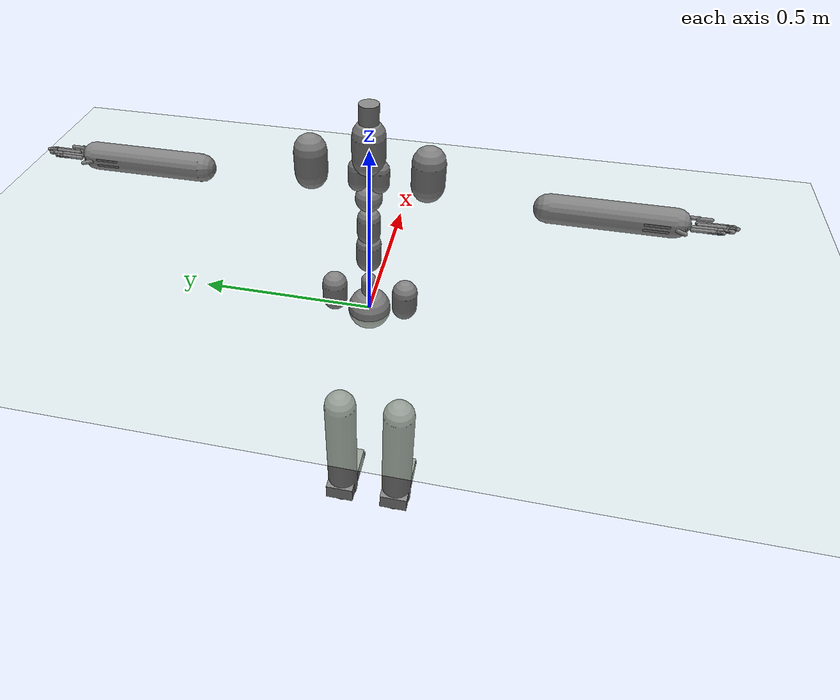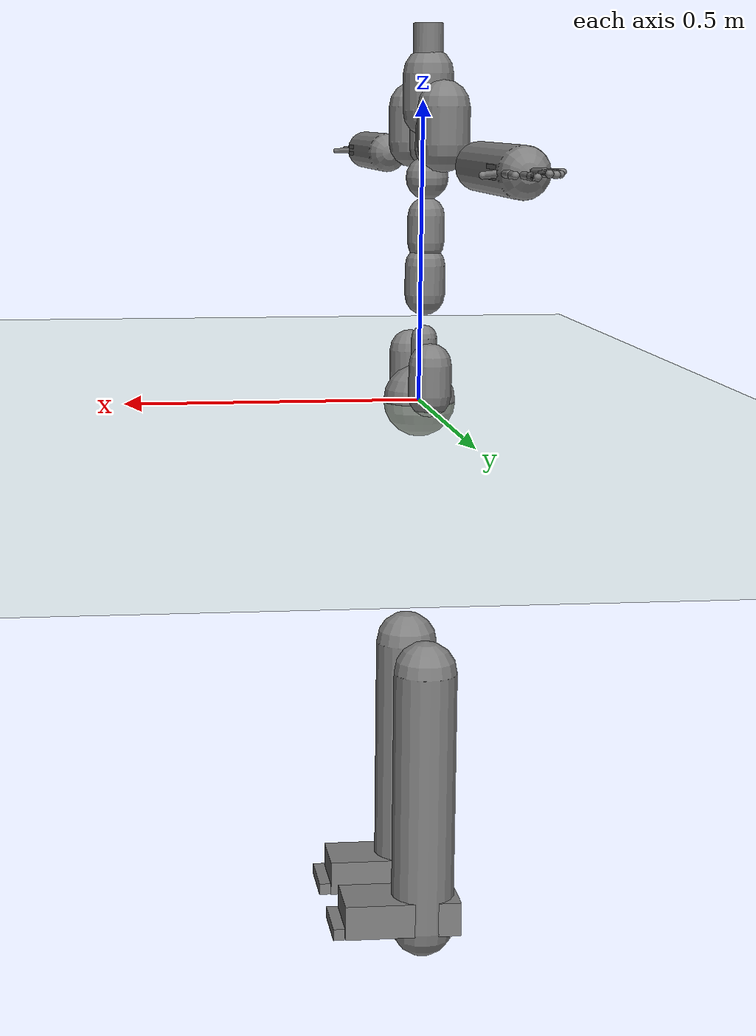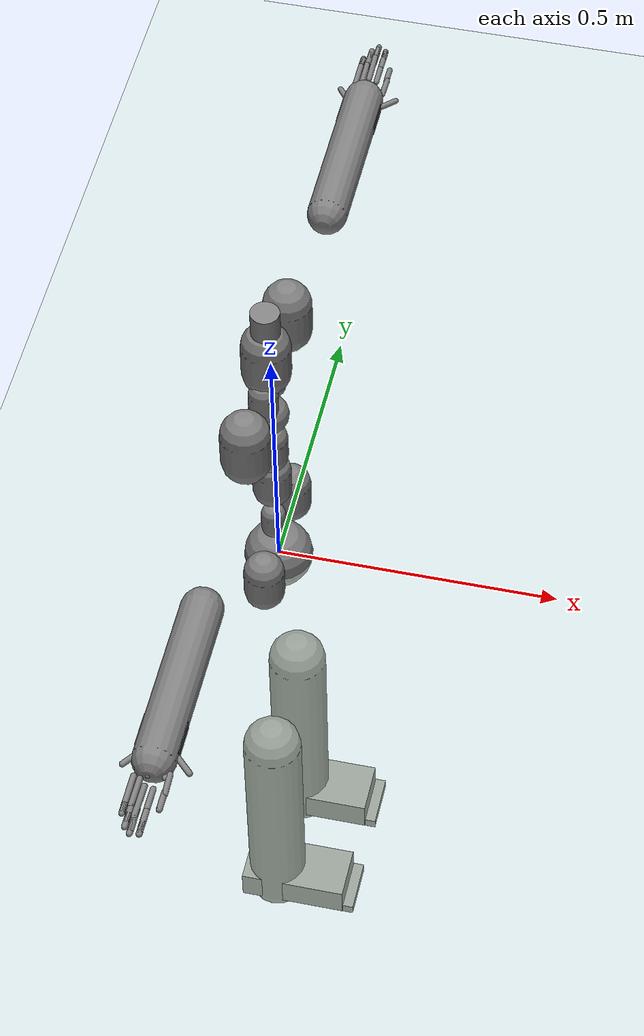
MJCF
<?xml version="1.0" ?>
<mujoco model="humanoid">
  <compiler coordinate="local"/>
  <statistic extent="2" center="0 0 1"/>
  <option timestep="0.00555"/>
  <default>
    <motor ctrlrange="-1 1" ctrllimited="true"/>
    <geom type="capsule" condim="1" friction="1.0 0.05 0.05" solimp=".9 .99 .003" solref=".015 1"/>
    <joint type="hinge" damping="0.1" stiffness="5" armature=".007" limited="true" solimplimit="0 .99 .01"/>
    <site size=".04" group="3"/>
  </default>
  <asset>
    <texture type="skybox" builtin="gradient" rgb1=".4 .5 .6" rgb2="0 0 0" width="100" height="100"/>
    <texture builtin="flat" height="1278" mark="cross" markrgb="1 1 1" name="texgeom" random="0.01" rgb1="0.8 0.6 0.4" rgb2="0.8 0.6 0.4" type="cube" width="127"/>
    <texture builtin="checker" height="100" name="texplane" rgb1="0 0 0" rgb2="0.8 0.8 0.8" type="2d" width="100"/>
    <material name="MatPlane" reflectance="0.5" shininess="1" specular="1" texrepeat="60 60" texture="texplane"/>
    <material name="geom" texture="texgeom" texuniform="true"/>
  </asset>
  <worldbody>
    <light cutoff="100" diffuse="1 1 1" dir="-0 0 -1.3" directional="true" exponent="1" pos="0 0 1.3" specular=".1 .1 .1"/>
    <geom conaffinity="1" condim="3" name="floor" pos="0 0 0" rgba="0.8 0.9 0.8 1" size="100 100 .2" type="plane" material="MatPlane"/>
    <body name="pHipOrigin" pos="0 0 0">
      <freejoint name="pHipOrigin"/>
      <geom type="sphere" contype="1" conaffinity="1" density="4629.6296296296305" size="0.06117" pos="0.0000 0.0000 -0.0000"/>
      <body name="jL5S1" pos="-0.00689298 0 0.06203665">
        <geom type="capsule" contype="1" conaffinity="1" density="1000" fromto="0 0 0.01248 0 0 0.04369" size="0.02185"/>
        <joint name="jL5S1_x" type="hinge" pos="0 0 0" axis="1 0 0" stiffness="500" damping="500" armature="0.02" range="-180.0000 180.0000"/>
        <joint name="jL5S1_y" type="hinge" pos="0 0 0" axis="0 1 0" stiffness="500" damping="500" armature="0.02" range="-180.0000 180.0000"/>
        <joint name="jL5S1_z" type="hinge" pos="0 0 0" axis="0 0 1" stiffness="500" damping="500" armature="0.02" range="-180.0000 180.0000"/>
        <body name="jL4L3" pos="0 0 0.09731791">
          <geom type="capsule" contype="1" conaffinity="1" density="1000" fromto="0 0 0.01946 0 0 0.06812" size="0.03406"/>
          <joint name="jL4L3_x" type="hinge" pos="0 0 0" axis="1 0 0" stiffness="500" damping="500" armature="0.02" range="-180.0000 180.0000"/>
          <joint name="jL4L3_y" type="hinge" pos="0 0 0" axis="0 1 0" stiffness="500" damping="500" armature="0.02" range="-180.0000 180.0000"/>
          <joint name="jL4L3_z" type="hinge" pos="0 0 0" axis="0 0 1" stiffness="500" damping="500" armature="0.02" range="-180.0000 180.0000"/>
          <body name="jL1T12" pos="-0.00068507 0 0.08879743">
            <geom type="capsule" contype="1" conaffinity="1" density="1000" fromto="0 0 0.01776 0 0 0.06216" size="0.03108"/>
            <joint name="jL1T12_x" type="hinge" pos="0 0 0" axis="1 0 0" stiffness="500" damping="500" armature="0.02" range="-180.0000 180.0000"/>
            <joint name="jL1T12_y" type="hinge" pos="0 0 0" axis="0 1 0" stiffness="500" damping="500" armature="0.02" range="-180.0000 180.0000"/>
            <joint name="jL1T12_z" type="hinge" pos="0 0 0" axis="0 0 1" stiffness="500" damping="500" armature="0.02" range="-180.0000 180.0000"/>
            <body name="jT9T8" pos="-0.00068882 0 0.08911010">
              <geom type="sphere" contype="1" conaffinity="1" density="1000" size="0.03565" pos="0.000 0.0000 0.035645"/>
              <joint name="jT9T8_x" type="hinge" pos="0 0 0" axis="1 0 0" stiffness="500" damping="500" armature="0.02" range="-180.0000 180.0000"/>
              <joint name="jT9T8_y" type="hinge" pos="0 0 0" axis="0 1 0" stiffness="500" damping="500" armature="0.02" range="-180.0000 180.0000"/>
              <joint name="jT9T8_z" type="hinge" pos="0 0 0" axis="0 0 1" stiffness="500" damping="500" armature="0.02" range="-180.0000 180.0000"/>
              <body name="jT1C7" pos="0 0 0.12090200">
                <geom type="capsule" contype="1" conaffinity="1" density="1000" fromto="0 0 0.02418 0 0 0.08463" size="0.04232"/>
                <joint name="jT1C7_x" type="hinge" pos="0 0 0" axis="1 0 0" stiffness="500" damping="500" armature="0.02" range="-180.0000 180.0000"/>
                <joint name="jT1C7_y" type="hinge" pos="0 0 0" axis="0 1 0" stiffness="500" damping="500" armature="0.02" range="-180.0000 180.0000"/>
                <joint name="jT1C7_z" type="hinge" pos="0 0 0" axis="0 0 1" stiffness="500" damping="500" armature="0.02" range="-180.0000 180.0000"/>
                <body name="jC1Head" pos="0.00097551 0 0.08268711">
                  <geom type="cylinder" contype="1" conaffinity="1" density="1000" fromto="0 0 0 0 0 0.08269" size="0.02481"/>
                  <joint name="jC1Head_x" type="hinge" pos="0 0 0" axis="1 0 0" stiffness="500" damping="500" armature="0.02" range="-180.0000 180.0000"/>
                  <joint name="jC1Head_y" type="hinge" pos="0 0 0" axis="0 1 0" stiffness="500" damping="500" armature="0.02" range="-180.0000 180.0000"/>
                  <joint name="jC1Head_z" type="hinge" pos="0 0 0" axis="0 0 1" stiffness="500" damping="500" armature="0.02" range="-180.0000 180.0000"/>
                </body>
              </body>
              <body name="jRightT4Shoulder" pos="0 -0.02752296 0.06710702">
                <geom type="capsule" contype="1" conaffinity="1" density="1000" fromto="0 0 0.01451 0 0 0.05077" size="0.02539"/>
                <joint name="jRightT4Shoulder_x" type="hinge" pos="0 0 0" axis="1 0 0" stiffness="500" damping="500" armature="0.02" range="-180.0000 180.0000"/>
                <joint name="jRightT4Shoulder_y" type="hinge" pos="0 0 0" axis="0 1 0" stiffness="500" damping="500" armature="0.02" range="-180.0000 180.0000"/>
                <joint name="jRightT4Shoulder_z" type="hinge" pos="0 0 0" axis="0 0 1" stiffness="500" damping="500" armature="0.02" range="-180.0000 180.0000"/>
                <body name="jRightShoulder" pos="0 -0.12130388 0">
                  <geom type="capsule" contype="1" conaffinity="1" density="1000" fromto="0 0 0.02426 0 0 0.08491" size="0.04246"/>
                  <joint name="jRightShoulder_x" type="hinge" pos="0 0 0" axis="1 0 0" stiffness="500" damping="500" armature="0.02" range="-180.0000 180.0000"/>
                  <joint name="jRightShoulder_y" type="hinge" pos="0 0 0" axis="0 1 0" stiffness="500" damping="500" armature="0.02" range="-180.0000 180.0000"/>
                  <joint name="jRightShoulder_z" type="hinge" pos="0 0 0" axis="0 0 1" stiffness="500" damping="500" armature="0.02" range="-180.0000 180.0000"/>
                  <body name="jRightElbow" pos="0 -0.29600415 0">
                    <geom type="capsule" contype="1" conaffinity="1" density="1000" fromto="0 0 0 0.00000000 -0.29600415 0.00000000" size="0.03552"/>
                    <joint name="jRightElbow_x" type="hinge" pos="0 0 0" axis="1 0 0" stiffness="500" damping="500" armature="0.02" range="-180.0000 180.0000"/>
                    <joint name="jRightElbow_y" type="hinge" pos="0 0 0" axis="0 1 0" stiffness="500" damping="500" armature="0.02" range="-180.0000 180.0000"/>
                    <joint name="jRightElbow_z" type="hinge" pos="0 0 0" axis="0 0 1" stiffness="500" damping="500" armature="0.02" range="-180.0000 180.0000"/>
                    <body name="jRightWrist" pos="0.00010124 -0.25153226 0">
                      <geom density="1000" type="box" pos="0 0 0" size="0.035 0.03 0.01" quat="1.0000 0.0000 0.0000 0.0000"/>
                      <joint name="jRightWrist_x" type="hinge" pos="0 0 0" axis="1 0 0" stiffness="500" damping="500" armature="0.02" range="-180.0000 180.0000"/>
                      <joint name="jRightWrist_y" type="hinge" pos="0 0 0" axis="0 1 0" stiffness="500" damping="500" armature="0.02" range="-180.0000 180.0000"/>
                      <joint name="jRightWrist_z" type="hinge" pos="0 0 0" axis="0 0 1" stiffness="500" damping="500" armature="0.02" range="-180.0000 180.0000"/>
                      <body name="jRightFirstCMC" pos="0.02922663 -0.02801536 -0.00132356">
                        <geom type="capsule" contype="1" conaffinity="1" density="1000" fromto="0 0 0 0.02922663 -0.02801536 -0.00132356" size="0.005"/>
                        <joint name="jRightFirstCMC_x" type="hinge" pos="0 0 0" axis="1 0 0" stiffness="500" damping="500" armature="0.02" range="-180.0000 180.0000"/>
                        <joint name="jRightFirstCMC_y" type="hinge" pos="0 0 0" axis="0 1 0" stiffness="500" damping="500" armature="0.02" range="-180.0000 180.0000"/>
                        <joint name="jRightFirstCMC_z" type="hinge" pos="0 0 0" axis="0 0 1" stiffness="500" damping="500" armature="0.02" range="-180.0000 180.0000"/>
                        <body name="jRightFirstMCP" pos="0.00131620 -0.03714235 0.00078482">
                          <geom type="capsule" contype="1" conaffinity="1" density="1000" fromto="0 0 0 0.00131620 -0.03714235 0.00078482" size="0.005"/>
                          <joint name="jRightFirstMCP_x" type="hinge" pos="0 0 0" axis="1 0 0" stiffness="500" damping="500" armature="0.02" range="-180.0000 180.0000"/>
                          <joint name="jRightFirstMCP_y" type="hinge" pos="0 0 0" axis="0 1 0" stiffness="500" damping="500" armature="0.02" range="-180.0000 180.0000"/>
                          <joint name="jRightFirstMCP_z" type="hinge" pos="0 0 0" axis="0 0 1" stiffness="500" damping="500" armature="0.02" range="-180.0000 180.0000"/>
                          <body name="jRightIP" pos="0 -0.03266054 0">
                            <geom type="capsule" contype="1" conaffinity="1" density="1000" fromto="0 0 0 0.00000000 -0.03266054 0.00000000" size="0.005"/>
                            <joint name="jRightIP_x" type="hinge" pos="0 0 0" axis="1 0 0" stiffness="500" damping="500" armature="0.02" range="-180.0000 180.0000"/>
                            <joint name="jRightIP_y" type="hinge" pos="0 0 0" axis="0 1 0" stiffness="500" damping="500" armature="0.02" range="-180.0000 180.0000"/>
                            <joint name="jRightIP_z" type="hinge" pos="0 0 0" axis="0 0 1" stiffness="500" damping="500" armature="0.02" range="-180.0000 180.0000"/>
                          </body>
                        </body>
                      </body>
                      <body name="jRightSecondCMC" pos="0.01238404 -0.03618225 -0.00063111">
                        <geom type="capsule" contype="1" conaffinity="1" density="1000" fromto="0 0 0 0.01238404 -0.03618225 -0.00063111" size="0.005"/>
                        <joint name="jRightSecondCMC_x" type="hinge" pos="0 0 0" axis="1 0 0" stiffness="500" damping="500" armature="0.02" range="-180.0000 180.0000"/>
                        <joint name="jRightSecondCMC_y" type="hinge" pos="0 0 0" axis="0 1 0" stiffness="500" damping="500" armature="0.02" range="-180.0000 180.0000"/>
                        <joint name="jRightSecondCMC_z" type="hinge" pos="0 0 0" axis="0 0 1" stiffness="500" damping="500" armature="0.02" range="-180.0000 180.0000"/>
                        <body name="jRightSecondMCP" pos="-0.00037720 -0.06016009 -0.00062406">
                          <geom type="capsule" contype="1" conaffinity="1" density="1000" fromto="0 0 0 -0.00037720 -0.06016009 -0.00062406" size="0.005"/>
                          <joint name="jRightSecondMCP_x" type="hinge" pos="0 0 0" axis="1 0 0" stiffness="500" damping="500" armature="0.02" range="-180.0000 180.0000"/>
                          <joint name="jRightSecondMCP_y" type="hinge" pos="0 0 0" axis="0 1 0" stiffness="500" damping="500" armature="0.02" range="-180.0000 180.0000"/>
                          <joint name="jRightSecondMCP_z" type="hinge" pos="0 0 0" axis="0 0 1" stiffness="500" damping="500" armature="0.02" range="-180.0000 180.0000"/>
                          <body name="jRightSecondPIP" pos="0 -0.03974905 0">
                            <geom type="capsule" contype="1" conaffinity="1" density="1000" fromto="0 0 0 0.00000000 -0.03974905 0.00000000" size="0.005"/>
                            <joint name="jRightSecondPIP_x" type="hinge" pos="0 0 0" axis="1 0 0" stiffness="500" damping="500" armature="0.02" range="-180.0000 180.0000"/>
                            <joint name="jRightSecondPIP_y" type="hinge" pos="0 0 0" axis="0 1 0" stiffness="500" damping="500" armature="0.02" range="-180.0000 180.0000"/>
                            <joint name="jRightSecondPIP_z" type="hinge" pos="0 0 0" axis="0 0 1" stiffness="500" damping="500" armature="0.02" range="-180.0000 180.0000"/>
                            <body name="jRightSecondDIP" pos="0 -0.02152674 0">
                              <geom type="capsule" contype="1" conaffinity="1" density="1000" fromto="0 0 0 0.00000000 -0.02152674 0.00000000" size="0.005"/>
                              <joint name="jRightSecondDIP_x" type="hinge" pos="0 0 0" axis="1 0 0" stiffness="500" damping="500" armature="0.02" range="-180.0000 180.0000"/>
                              <joint name="jRightSecondDIP_y" type="hinge" pos="0 0 0" axis="0 1 0" stiffness="500" damping="500" armature="0.02" range="-180.0000 180.0000"/>
                              <joint name="jRightSecondDIP_z" type="hinge" pos="0 0 0" axis="0 0 1" stiffness="500" damping="500" armature="0.02" range="-180.0000 180.0000"/>
                            </body>
                          </body>
                        </body>
                      </body>
                      <body name="jRightThirdCMC" pos="-0.00070271 -0.03800070 0.00159761">
                        <geom type="capsule" contype="1" conaffinity="1" density="1000" fromto="0 0 0 -0.00070271 -0.03800070 0.00159761" size="0.005"/>
                        <joint name="jRightThirdCMC_x" type="hinge" pos="0 0 0" axis="1 0 0" stiffness="500" damping="500" armature="0.02" range="-180.0000 180.0000"/>
                        <joint name="jRightThirdCMC_y" type="hinge" pos="0 0 0" axis="0 1 0" stiffness="500" damping="500" armature="0.02" range="-180.0000 180.0000"/>
                        <joint name="jRightThirdCMC_z" type="hinge" pos="0 0 0" axis="0 0 1" stiffness="500" damping="500" armature="0.02" range="-180.0000 180.0000"/>
                        <body name="jRightThirdMCP" pos="-0.00070407 -0.05833211 0.00158699">
                          <geom type="capsule" contype="1" conaffinity="1" density="1000" fromto="0 0 0 -0.00070407 -0.05833211 0.00158699" size="0.005"/>
                          <joint name="jRightThirdMCP_x" type="hinge" pos="0 0 0" axis="1 0 0" stiffness="500" damping="500" armature="0.02" range="-180.0000 180.0000"/>
                          <joint name="jRightThirdMCP_y" type="hinge" pos="0 0 0" axis="0 1 0" stiffness="500" damping="500" armature="0.02" range="-180.0000 180.0000"/>
                          <joint name="jRightThirdMCP_z" type="hinge" pos="0 0 0" axis="0 0 1" stiffness="500" damping="500" armature="0.02" range="-180.0000 180.0000"/>
                          <body name="jRightThirdPIP" pos="0 -0.04177861 0">
                            <geom type="capsule" contype="1" conaffinity="1" density="1000" fromto="0 0 0 0.00000000 -0.04177861 0.00000000" size="0.005"/>
                            <joint name="jRightThirdPIP_x" type="hinge" pos="0 0 0" axis="1 0 0" stiffness="500" damping="500" armature="0.02" range="-180.0000 180.0000"/>
                            <joint name="jRightThirdPIP_y" type="hinge" pos="0 0 0" axis="0 1 0" stiffness="500" damping="500" armature="0.02" range="-180.0000 180.0000"/>
                            <joint name="jRightThirdPIP_z" type="hinge" pos="0 0 0" axis="0 0 1" stiffness="500" damping="500" armature="0.02" range="-180.0000 180.0000"/>
                            <body name="jRightThirdDIP" pos="0 -0.02285826 0">
                              <geom type="capsule" contype="1" conaffinity="1" density="1000" fromto="0 0 0 0.00000000 -0.02285826 0.00000000" size="0.005"/>
                              <joint name="jRightThirdDIP_x" type="hinge" pos="0 0 0" axis="1 0 0" stiffness="500" damping="500" armature="0.02" range="-180.0000 180.0000"/>
                              <joint name="jRightThirdDIP_y" type="hinge" pos="0 0 0" axis="0 1 0" stiffness="500" damping="500" armature="0.02" range="-180.0000 180.0000"/>
                              <joint name="jRightThirdDIP_z" type="hinge" pos="0 0 0" axis="0 0 1" stiffness="500" damping="500" armature="0.02" range="-180.0000 180.0000"/>
                            </body>
                          </body>
                        </body>
                      </body>
                      <body name="jRightFourthCMC" pos="-0.01169525 -0.03257319 0.00076672">
                        <geom type="capsule" contype="1" conaffinity="1" density="1000" fromto="0 0 0 -0.01169525 -0.03257319 0.00076672" size="0.005"/>
                        <joint name="jRightFourthCMC_x" type="hinge" pos="0 0 0" axis="1 0 0" stiffness="500" damping="500" armature="0.02" range="-180.0000 180.0000"/>
                        <joint name="jRightFourthCMC_y" type="hinge" pos="0 0 0" axis="0 1 0" stiffness="500" damping="500" armature="0.02" range="-180.0000 180.0000"/>
                        <joint name="jRightFourthCMC_z" type="hinge" pos="0 0 0" axis="0 0 1" stiffness="500" damping="500" armature="0.02" range="-180.0000 180.0000"/>
                        <body name="jRightFourthMCP" pos="-0.00037118 -0.05087332 0.00079926">
                          <geom type="capsule" contype="1" conaffinity="1" density="1000" fromto="0 0 0 -0.00037118 -0.05087332 0.00079926" size="0.005"/>
                          <joint name="jRightFourthMCP_x" type="hinge" pos="0 0 0" axis="1 0 0" stiffness="500" damping="500" armature="0.02" range="-180.0000 180.0000"/>
                          <joint name="jRightFourthMCP_y" type="hinge" pos="0 0 0" axis="0 1 0" stiffness="500" damping="500" armature="0.02" range="-180.0000 180.0000"/>
                          <joint name="jRightFourthMCP_z" type="hinge" pos="0 0 0" axis="0 0 1" stiffness="500" damping="500" armature="0.02" range="-180.0000 180.0000"/>
                          <body name="jRightFourthPIP" pos="0 -0.04096124 0">
                            <geom type="capsule" contype="1" conaffinity="1" density="1000" fromto="0 0 0 0.00000000 -0.04096124 0.00000000" size="0.005"/>
                            <joint name="jRightFourthPIP_x" type="hinge" pos="0 0 0" axis="1 0 0" stiffness="500" damping="500" armature="0.02" range="-180.0000 180.0000"/>
                            <joint name="jRightFourthPIP_y" type="hinge" pos="0 0 0" axis="0 1 0" stiffness="500" damping="500" armature="0.02" range="-180.0000 180.0000"/>
                            <joint name="jRightFourthPIP_z" type="hinge" pos="0 0 0" axis="0 0 1" stiffness="500" damping="500" armature="0.02" range="-180.0000 180.0000"/>
                            <body name="jRightFourthDIP" pos="0 -0.02423431 0">
                              <geom type="capsule" contype="1" conaffinity="1" density="1000" fromto="0 0 0 0.00000000 -0.02423431 0.00000000" size="0.005"/>
                              <joint name="jRightFourthDIP_x" type="hinge" pos="0 0 0" axis="1 0 0" stiffness="500" damping="500" armature="0.02" range="-180.0000 180.0000"/>
                              <joint name="jRightFourthDIP_y" type="hinge" pos="0 0 0" axis="0 1 0" stiffness="500" damping="500" armature="0.02" range="-180.0000 180.0000"/>
                              <joint name="jRightFourthDIP_z" type="hinge" pos="0 0 0" axis="0 0 1" stiffness="500" damping="500" armature="0.02" range="-180.0000 180.0000"/>
                            </body>
                          </body>
                        </body>
                      </body>
                      <body name="jRightFifthCMC" pos="-0.02265407 -0.03156586 0.00062269">
                        <geom type="capsule" contype="1" conaffinity="1" density="1000" fromto="0 0 0 -0.02265407 -0.03156586 0.00062269" size="0.005"/>
                        <joint name="jRightFifthCMC_x" type="hinge" pos="0 0 0" axis="1 0 0" stiffness="500" damping="500" armature="0.02" range="-180.0000 180.0000"/>
                        <joint name="jRightFifthCMC_y" type="hinge" pos="0 0 0" axis="0 1 0" stiffness="500" damping="500" armature="0.02" range="-180.0000 180.0000"/>
                        <joint name="jRightFifthCMC_z" type="hinge" pos="0 0 0" axis="0 0 1" stiffness="500" damping="500" armature="0.02" range="-180.0000 180.0000"/>
                        <body name="jRightFifthMCP" pos="-0.00000724 -0.04900972 0.00067443">
                          <geom type="capsule" contype="1" conaffinity="1" density="1000" fromto="0 0 0 -0.00000724 -0.04900972 0.00067443" size="0.005"/>
                          <joint name="jRightFifthMCP_x" type="hinge" pos="0 0 0" axis="1 0 0" stiffness="500" damping="500" armature="0.02" range="-180.0000 180.0000"/>
                          <joint name="jRightFifthMCP_y" type="hinge" pos="0 0 0" axis="0 1 0" stiffness="500" damping="500" armature="0.02" range="-180.0000 180.0000"/>
                          <joint name="jRightFifthMCP_z" type="hinge" pos="0 0 0" axis="0 0 1" stiffness="500" damping="500" armature="0.02" range="-180.0000 180.0000"/>
                          <body name="jRightFifthPIP" pos="0 -0.03416834 0">
                            <geom type="capsule" contype="1" conaffinity="1" density="1000" fromto="0 0 0 0.00000000 -0.03416834 0.00000000" size="0.005"/>
                            <joint name="jRightFifthPIP_x" type="hinge" pos="0 0 0" axis="1 0 0" stiffness="500" damping="500" armature="0.02" range="-180.0000 180.0000"/>
                            <joint name="jRightFifthPIP_y" type="hinge" pos="0 0 0" axis="0 1 0" stiffness="500" damping="500" armature="0.02" range="-180.0000 180.0000"/>
                            <joint name="jRightFifthPIP_z" type="hinge" pos="0 0 0" axis="0 0 1" stiffness="500" damping="500" armature="0.02" range="-180.0000 180.0000"/>
                            <body name="jRightFifthDIP" pos="0 -0.01755431 0">
                              <geom type="capsule" contype="1" conaffinity="1" density="1000" fromto="0 0 0 0.00000000 -0.01755431 0.00000000" size="0.005"/>
                              <joint name="jRightFifthDIP_x" type="hinge" pos="0 0 0" axis="1 0 0" stiffness="500" damping="500" armature="0.02" range="-180.0000 180.0000"/>
                              <joint name="jRightFifthDIP_y" type="hinge" pos="0 0 0" axis="0 1 0" stiffness="500" damping="500" armature="0.02" range="-180.0000 180.0000"/>
                              <joint name="jRightFifthDIP_z" type="hinge" pos="0 0 0" axis="0 0 1" stiffness="500" damping="500" armature="0.02" range="-180.0000 180.0000"/>
                            </body>
                          </body>
                        </body>
                      </body>
                    </body>
                  </body>
                </body>
              </body>
              <body name="jLeftT4Shoulder" pos="0 0.02756396 0.06720699">
                <geom type="capsule" contype="1" conaffinity="1" density="1000" fromto="0 0 0.01453 0 0 0.05085" size="0.02542"/>
                <joint name="jLeftT4Shoulder_x" type="hinge" pos="0 0 0" axis="1 0 0" stiffness="500" damping="500" armature="0.02" range="-180.0000 180.0000"/>
                <joint name="jLeftT4Shoulder_y" type="hinge" pos="0 0 0" axis="0 1 0" stiffness="500" damping="500" armature="0.02" range="-180.0000 180.0000"/>
                <joint name="jLeftT4Shoulder_z" type="hinge" pos="0 0 0" axis="0 0 1" stiffness="500" damping="500" armature="0.02" range="-180.0000 180.0000"/>
                <body name="jLeftShoulder" pos="0 0.12072624 0">
                  <geom type="capsule" contype="1" conaffinity="1" density="1000" fromto="0 0 0.02415 0 0 0.08451" size="0.04225"/>
                  <joint name="jLeftShoulder_x" type="hinge" pos="0 0 0" axis="1 0 0" stiffness="500" damping="500" armature="0.02" range="-180.0000 180.0000"/>
                  <joint name="jLeftShoulder_y" type="hinge" pos="0 0 0" axis="0 1 0" stiffness="500" damping="500" armature="0.02" range="-180.0000 180.0000"/>
                  <joint name="jLeftShoulder_z" type="hinge" pos="0 0 0" axis="0 0 1" stiffness="500" damping="500" armature="0.02" range="-180.0000 180.0000"/>
                  <body name="jLeftElbow" pos="0 0.29724428 0">
                    <geom type="capsule" contype="1" conaffinity="1" density="1000" fromto="0 0 0 0.00000000 0.29724428 0.00000000" size="0.03567"/>
                    <joint name="jLeftElbow_x" type="hinge" pos="0 0 0" axis="1 0 0" stiffness="500" damping="500" armature="0.02" range="-180.0000 180.0000"/>
                    <joint name="jLeftElbow_y" type="hinge" pos="0 0 0" axis="0 1 0" stiffness="500" damping="500" armature="0.02" range="-180.0000 180.0000"/>
                    <joint name="jLeftElbow_z" type="hinge" pos="0 0 0" axis="0 0 1" stiffness="500" damping="500" armature="0.02" range="-180.0000 180.0000"/>
                    <body name="jLeftWrist" pos="0.00010138 0.25187725 0">
                      <geom density="1000" type="box" pos="0 0 0" size="0.035 0.03 0.01" quat="1.0000 0.0000 0.0000 0.0000"/>
                      <joint name="jLeftWrist_x" type="hinge" pos="0 0 0" axis="1 0 0" stiffness="500" damping="500" armature="0.02" range="-180.0000 180.0000"/>
                      <joint name="jLeftWrist_y" type="hinge" pos="0 0 0" axis="0 1 0" stiffness="500" damping="500" armature="0.02" range="-180.0000 180.0000"/>
                      <joint name="jLeftWrist_z" type="hinge" pos="0 0 0" axis="0 0 1" stiffness="500" damping="500" armature="0.02" range="-180.0000 180.0000"/>
                      <body name="jLeftFirstCMC" pos="0.02860598 0.02867354 -0.00128031">
                        <geom type="capsule" contype="1" conaffinity="1" density="1000" fromto="0 0 0 0.02860598 0.02867354 -0.00128031" size="0.005"/>
                        <joint name="jLeftFirstCMC_x" type="hinge" pos="0 0 0" axis="1 0 0" stiffness="500" damping="500" armature="0.02" range="-180.0000 180.0000"/>
                        <joint name="jLeftFirstCMC_y" type="hinge" pos="0 0 0" axis="0 1 0" stiffness="500" damping="500" armature="0.02" range="-180.0000 180.0000"/>
                        <joint name="jLeftFirstCMC_z" type="hinge" pos="0 0 0" axis="0 0 1" stiffness="500" damping="500" armature="0.02" range="-180.0000 180.0000"/>
                        <body name="jLeftFirstMCP" pos="0.00130352 0.03714152 0.00076483">
                          <geom type="capsule" contype="1" conaffinity="1" density="1000" fromto="0 0 0 0.00130352 0.03714152 0.00076483" size="0.005"/>
                          <joint name="jLeftFirstMCP_x" type="hinge" pos="0 0 0" axis="1 0 0" stiffness="500" damping="500" armature="0.02" range="-180.0000 180.0000"/>
                          <joint name="jLeftFirstMCP_y" type="hinge" pos="0 0 0" axis="0 1 0" stiffness="500" damping="500" armature="0.02" range="-180.0000 180.0000"/>
                          <joint name="jLeftFirstMCP_z" type="hinge" pos="0 0 0" axis="0 0 1" stiffness="500" damping="500" armature="0.02" range="-180.0000 180.0000"/>
                          <body name="jLeftIP" pos="0 0.03266054 0">
                            <geom type="capsule" contype="1" conaffinity="1" density="1000" fromto="0 0 0 0.00000000 0.03266054 0.00000000" size="0.005"/>
                            <joint name="jLeftIP_x" type="hinge" pos="0 0 0" axis="1 0 0" stiffness="500" damping="500" armature="0.02" range="-180.0000 180.0000"/>
                            <joint name="jLeftIP_y" type="hinge" pos="0 0 0" axis="0 1 0" stiffness="500" damping="500" armature="0.02" range="-180.0000 180.0000"/>
                            <joint name="jLeftIP_z" type="hinge" pos="0 0 0" axis="0 0 1" stiffness="500" damping="500" armature="0.02" range="-180.0000 180.0000"/>
                          </body>
                        </body>
                      </body>
                      <body name="jLeftSecondCMC" pos="0.01252668 0.03611567 -0.00063632">
                        <geom type="capsule" contype="1" conaffinity="1" density="1000" fromto="0 0 0 0.01252668 0.03611567 -0.00063632" size="0.005"/>
                        <joint name="jLeftSecondCMC_x" type="hinge" pos="0 0 0" axis="1 0 0" stiffness="500" damping="500" armature="0.02" range="-180.0000 180.0000"/>
                        <joint name="jLeftSecondCMC_y" type="hinge" pos="0 0 0" axis="0 1 0" stiffness="500" damping="500" armature="0.02" range="-180.0000 180.0000"/>
                        <joint name="jLeftSecondCMC_z" type="hinge" pos="0 0 0" axis="0 0 1" stiffness="500" damping="500" armature="0.02" range="-180.0000 180.0000"/>
                        <body name="jLeftSecondMCP" pos="-0.00032889 0.06016132 -0.00063177">
                          <geom type="capsule" contype="1" conaffinity="1" density="1000" fromto="0 0 0 -0.00032889 0.06016132 -0.00063177" size="0.005"/>
                          <joint name="jLeftSecondMCP_x" type="hinge" pos="0 0 0" axis="1 0 0" stiffness="500" damping="500" armature="0.02" range="-180.0000 180.0000"/>
                          <joint name="jLeftSecondMCP_y" type="hinge" pos="0 0 0" axis="0 1 0" stiffness="500" damping="500" armature="0.02" range="-180.0000 180.0000"/>
                          <joint name="jLeftSecondMCP_z" type="hinge" pos="0 0 0" axis="0 0 1" stiffness="500" damping="500" armature="0.02" range="-180.0000 180.0000"/>
                          <body name="jLeftSecondPIP" pos="0 0.03974905 0">
                            <geom type="capsule" contype="1" conaffinity="1" density="1000" fromto="0 0 0 0.00000000 0.03974905 0.00000000" size="0.005"/>
                            <joint name="jLeftSecondPIP_x" type="hinge" pos="0 0 0" axis="1 0 0" stiffness="500" damping="500" armature="0.02" range="-180.0000 180.0000"/>
                            <joint name="jLeftSecondPIP_y" type="hinge" pos="0 0 0" axis="0 1 0" stiffness="500" damping="500" armature="0.02" range="-180.0000 180.0000"/>
                            <joint name="jLeftSecondPIP_z" type="hinge" pos="0 0 0" axis="0 0 1" stiffness="500" damping="500" armature="0.02" range="-180.0000 180.0000"/>
                            <body name="jLeftSecondDIP" pos="0 0.02152674 0">
                              <geom type="capsule" contype="1" conaffinity="1" density="1000" fromto="0 0 0 0.00000000 0.02152674 0.00000000" size="0.005"/>
                              <joint name="jLeftSecondDIP_x" type="hinge" pos="0 0 0" axis="1 0 0" stiffness="500" damping="500" armature="0.02" range="-180.0000 180.0000"/>
                              <joint name="jLeftSecondDIP_y" type="hinge" pos="0 0 0" axis="0 1 0" stiffness="500" damping="500" armature="0.02" range="-180.0000 180.0000"/>
                              <joint name="jLeftSecondDIP_z" type="hinge" pos="0 0 0" axis="0 0 1" stiffness="500" damping="500" armature="0.02" range="-180.0000 180.0000"/>
                            </body>
                          </body>
                        </body>
                      </body>
                      <body name="jLeftThirdCMC" pos="-0.00070683 0.03800411 0.00154435">
                        <geom type="capsule" contype="1" conaffinity="1" density="1000" fromto="0 0 0 -0.00070683 0.03800411 0.00154435" size="0.005"/>
                        <joint name="jLeftThirdCMC_x" type="hinge" pos="0 0 0" axis="1 0 0" stiffness="500" damping="500" armature="0.02" range="-180.0000 180.0000"/>
                        <joint name="jLeftThirdCMC_y" type="hinge" pos="0 0 0" axis="0 1 0" stiffness="500" damping="500" armature="0.02" range="-180.0000 180.0000"/>
                        <joint name="jLeftThirdCMC_z" type="hinge" pos="0 0 0" axis="0 0 1" stiffness="500" damping="500" armature="0.02" range="-180.0000 180.0000"/>
                        <body name="jLeftThirdMCP" pos="-0.00070975 0.05833324 0.00155509">
                          <geom type="capsule" contype="1" conaffinity="1" density="1000" fromto="0 0 0 -0.00070975 0.05833324 0.00155509" size="0.005"/>
                          <joint name="jLeftThirdMCP_x" type="hinge" pos="0 0 0" axis="1 0 0" stiffness="500" damping="500" armature="0.02" range="-180.0000 180.0000"/>
                          <joint name="jLeftThirdMCP_y" type="hinge" pos="0 0 0" axis="0 1 0" stiffness="500" damping="500" armature="0.02" range="-180.0000 180.0000"/>
                          <joint name="jLeftThirdMCP_z" type="hinge" pos="0 0 0" axis="0 0 1" stiffness="500" damping="500" armature="0.02" range="-180.0000 180.0000"/>
                          <body name="jLeftThirdPIP" pos="0 0.04177861 0">
                            <geom type="capsule" contype="1" conaffinity="1" density="1000" fromto="0 0 0 0.00000000 0.04177861 0.00000000" size="0.005"/>
                            <joint name="jLeftThirdPIP_x" type="hinge" pos="0 0 0" axis="1 0 0" stiffness="500" damping="500" armature="0.02" range="-180.0000 180.0000"/>
                            <joint name="jLeftThirdPIP_y" type="hinge" pos="0 0 0" axis="0 1 0" stiffness="500" damping="500" armature="0.02" range="-180.0000 180.0000"/>
                            <joint name="jLeftThirdPIP_z" type="hinge" pos="0 0 0" axis="0 0 1" stiffness="500" damping="500" armature="0.02" range="-180.0000 180.0000"/>
                            <body name="jLeftThirdDIP" pos="0 0.02285826 0">
                              <geom type="capsule" contype="1" conaffinity="1" density="1000" fromto="0 0 0 0.00000000 0.02285826 0.00000000" size="0.005"/>
                              <joint name="jLeftThirdDIP_x" type="hinge" pos="0 0 0" axis="1 0 0" stiffness="500" damping="500" armature="0.02" range="-180.0000 180.0000"/>
                              <joint name="jLeftThirdDIP_y" type="hinge" pos="0 0 0" axis="0 1 0" stiffness="500" damping="500" armature="0.02" range="-180.0000 180.0000"/>
                              <joint name="jLeftThirdDIP_z" type="hinge" pos="0 0 0" axis="0 0 1" stiffness="500" damping="500" armature="0.02" range="-180.0000 180.0000"/>
                            </body>
                          </body>
                        </body>
                      </body>
                      <body name="jLeftFourthCMC" pos="-0.01212438 0.03240658 0.00081847">
                        <geom type="capsule" contype="1" conaffinity="1" density="1000" fromto="0 0 0 -0.01212438 0.03240658 0.00081847" size="0.005"/>
                        <joint name="jLeftFourthCMC_x" type="hinge" pos="0 0 0" axis="1 0 0" stiffness="500" damping="500" armature="0.02" range="-180.0000 180.0000"/>
                        <joint name="jLeftFourthCMC_y" type="hinge" pos="0 0 0" axis="0 1 0" stiffness="500" damping="500" armature="0.02" range="-180.0000 180.0000"/>
                        <joint name="jLeftFourthCMC_z" type="hinge" pos="0 0 0" axis="0 0 1" stiffness="500" damping="500" armature="0.02" range="-180.0000 180.0000"/>
                        <body name="jLeftFourthMCP" pos="-0.00039917 0.05087041 0.00084531">
                          <geom type="capsule" contype="1" conaffinity="1" density="1000" fromto="0 0 0 -0.00039917 0.05087041 0.00084531" size="0.005"/>
                          <joint name="jLeftFourthMCP_x" type="hinge" pos="0 0 0" axis="1 0 0" stiffness="500" damping="500" armature="0.02" range="-180.0000 180.0000"/>
                          <joint name="jLeftFourthMCP_y" type="hinge" pos="0 0 0" axis="0 1 0" stiffness="500" damping="500" armature="0.02" range="-180.0000 180.0000"/>
                          <joint name="jLeftFourthMCP_z" type="hinge" pos="0 0 0" axis="0 0 1" stiffness="500" damping="500" armature="0.02" range="-180.0000 180.0000"/>
                          <body name="jLeftFourthPIP" pos="0 0.04096124 0">
                            <geom type="capsule" contype="1" conaffinity="1" density="1000" fromto="0 0 0 0.00000000 0.04096124 0.00000000" size="0.005"/>
                            <joint name="jLeftFourthPIP_x" type="hinge" pos="0 0 0" axis="1 0 0" stiffness="500" damping="500" armature="0.02" range="-180.0000 180.0000"/>
                            <joint name="jLeftFourthPIP_y" type="hinge" pos="0 0 0" axis="0 1 0" stiffness="500" damping="500" armature="0.02" range="-180.0000 180.0000"/>
                            <joint name="jLeftFourthPIP_z" type="hinge" pos="0 0 0" axis="0 0 1" stiffness="500" damping="500" armature="0.02" range="-180.0000 180.0000"/>
                            <body name="jLeftFourthDIP" pos="0 0.02423431 0">
                              <geom type="capsule" contype="1" conaffinity="1" density="1000" fromto="0 0 0 0.00000000 0.02423431 0.00000000" size="0.005"/>
                              <joint name="jLeftFourthDIP_x" type="hinge" pos="0 0 0" axis="1 0 0" stiffness="500" damping="500" armature="0.02" range="-180.0000 180.0000"/>
                              <joint name="jLeftFourthDIP_y" type="hinge" pos="0 0 0" axis="0 1 0" stiffness="500" damping="500" armature="0.02" range="-180.0000 180.0000"/>
                              <joint name="jLeftFourthDIP_z" type="hinge" pos="0 0 0" axis="0 0 1" stiffness="500" damping="500" armature="0.02" range="-180.0000 180.0000"/>
                            </body>
                          </body>
                        </body>
                      </body>
                      <body name="jLeftFifthCMC" pos="-0.02334035 0.03106683 0.00063270">
                        <geom type="capsule" contype="1" conaffinity="1" density="1000" fromto="0 0 0 -0.02334035 0.03106683 0.00063270" size="0.005"/>
                        <joint name="jLeftFifthCMC_x" type="hinge" pos="0 0 0" axis="1 0 0" stiffness="500" damping="500" armature="0.02" range="-180.0000 180.0000"/>
                        <joint name="jLeftFifthCMC_y" type="hinge" pos="0 0 0" axis="0 1 0" stiffness="500" damping="500" armature="0.02" range="-180.0000 180.0000"/>
                        <joint name="jLeftFifthCMC_z" type="hinge" pos="0 0 0" axis="0 0 1" stiffness="500" damping="500" armature="0.02" range="-180.0000 180.0000"/>
                        <body name="jLeftFifthMCP" pos="-0.00001390 0.04900838 0.00070520">
                          <geom type="capsule" contype="1" conaffinity="1" density="1000" fromto="0 0 0 -0.00001390 0.04900838 0.00070520" size="0.005"/>
                          <joint name="jLeftFifthMCP_x" type="hinge" pos="0 0 0" axis="1 0 0" stiffness="500" damping="500" armature="0.02" range="-180.0000 180.0000"/>
                          <joint name="jLeftFifthMCP_y" type="hinge" pos="0 0 0" axis="0 1 0" stiffness="500" damping="500" armature="0.02" range="-180.0000 180.0000"/>
                          <joint name="jLeftFifthMCP_z" type="hinge" pos="0 0 0" axis="0 0 1" stiffness="500" damping="500" armature="0.02" range="-180.0000 180.0000"/>
                          <body name="jLeftFifthPIP" pos="0 0.03416834 0">
                            <geom type="capsule" contype="1" conaffinity="1" density="1000" fromto="0 0 0 0.00000000 0.03416834 0.00000000" size="0.005"/>
                            <joint name="jLeftFifthPIP_x" type="hinge" pos="0 0 0" axis="1 0 0" stiffness="500" damping="500" armature="0.02" range="-180.0000 180.0000"/>
                            <joint name="jLeftFifthPIP_y" type="hinge" pos="0 0 0" axis="0 1 0" stiffness="500" damping="500" armature="0.02" range="-180.0000 180.0000"/>
                            <joint name="jLeftFifthPIP_z" type="hinge" pos="0 0 0" axis="0 0 1" stiffness="500" damping="500" armature="0.02" range="-180.0000 180.0000"/>
                            <body name="jLeftFifthDIP" pos="0 0.01755431 0">
                              <geom type="capsule" contype="1" conaffinity="1" density="1000" fromto="0 0 0 0.00000000 0.01755431 0.00000000" size="0.005"/>
                              <joint name="jLeftFifthDIP_x" type="hinge" pos="0 0 0" axis="1 0 0" stiffness="500" damping="500" armature="0.02" range="-180.0000 180.0000"/>
                              <joint name="jLeftFifthDIP_y" type="hinge" pos="0 0 0" axis="0 1 0" stiffness="500" damping="500" armature="0.02" range="-180.0000 180.0000"/>
                              <joint name="jLeftFifthDIP_z" type="hinge" pos="0 0 0" axis="0 0 1" stiffness="500" damping="500" armature="0.02" range="-180.0000 180.0000"/>
                            </body>
                          </body>
                        </body>
                      </body>
                    </body>
                  </body>
                </body>
              </body>
            </body>
          </body>
        </body>
      </body>
      <body name="jRightHip" pos="-0.00017252 -0.10238340 0.00155313">
        <geom type="capsule" contype="1" conaffinity="1" density="1000" fromto="0 0 0.02048 0 0 0.07168" size="0.03584"/>
        <joint name="jRightHip_x" type="hinge" pos="0 0 0" axis="1 0 0" stiffness="500" damping="500" armature="0.02" range="-180.0000 180.0000"/>
        <joint name="jRightHip_y" type="hinge" pos="0 0 0" axis="0 1 0" stiffness="500" damping="500" armature="0.02" range="-180.0000 180.0000"/>
        <joint name="jRightHip_z" type="hinge" pos="0 0 0" axis="0 0 1" stiffness="500" damping="500" armature="0.02" range="-180.0000 180.0000"/>
        <body name="jRightKnee" pos="0.00005410 0 -0.45376119">
          <geom type="capsule" contype="1" conaffinity="1" density="1000" fromto="0 0 0 0.00005410 0.00000000 -0.45376119" size="0.05445"/>
          <joint name="jRightKnee_x" type="hinge" pos="0 0 0" axis="1 0 0" stiffness="500" damping="500" armature="0.02" range="-180.0000 180.0000"/>
          <joint name="jRightKnee_y" type="hinge" pos="0 0 0" axis="0 1 0" stiffness="500" damping="500" armature="0.02" range="-180.0000 180.0000"/>
          <joint name="jRightKnee_z" type="hinge" pos="0 0 0" axis="0 0 1" stiffness="500" damping="500" armature="0.02" range="-180.0000 180.0000"/>
          <body name="jRightAnkle" pos="0.00044789 0 -0.39666673">
            <geom density="1000" type="box" pos="0.04 0. -0.03" size="0.1 0.05 0.03" quat="1.0 0 0 0"/>
            <joint name="jRightAnkle_x" type="hinge" pos="0 0 0" axis="1 0 0" stiffness="500" damping="500" armature="0.02" range="-180.0000 180.0000"/>
            <joint name="jRightAnkle_y" type="hinge" pos="0 0 0" axis="0 1 0" stiffness="500" damping="500" armature="0.02" range="-180.0000 180.0000"/>
            <joint name="jRightAnkle_z" type="hinge" pos="0 0 0" axis="0 0 1" stiffness="500" damping="500" armature="0.02" range="-180.0000 180.0000"/>
            <body name="jRightBallFoot" pos="0.15105565 0 -0.06929845">
              <geom density="1000" type="box" pos="0 0 0.02" size="0.01 0.05 0.01" quat="1.0 0 0 0"/>
              <joint name="jRightBallFoot_x" type="hinge" pos="0 0 0" axis="1 0 0" stiffness="500" damping="500" armature="0.02" range="-180.0000 180.0000"/>
              <joint name="jRightBallFoot_y" type="hinge" pos="0 0 0" axis="0 1 0" stiffness="500" damping="500" armature="0.02" range="-180.0000 180.0000"/>
              <joint name="jRightBallFoot_z" type="hinge" pos="0 0 0" axis="0 0 1" stiffness="500" damping="500" armature="0.02" range="-180.0000 180.0000"/>
            </body>
          </body>
        </body>
      </body>
      <body name="jLeftHip" pos="-0.00016901 0.10160948 0.00152100">
        <geom type="capsule" contype="1" conaffinity="1" density="1000" fromto="0 0 0.02032 0 0 0.07113" size="0.03557"/>
        <joint name="jLeftHip_x" type="hinge" pos="0 0 0" axis="1 0 0" stiffness="500" damping="500" armature="0.02" range="-180.0000 180.0000"/>
        <joint name="jLeftHip_y" type="hinge" pos="0 0 0" axis="0 1 0" stiffness="500" damping="500" armature="0.02" range="-180.0000 180.0000"/>
        <joint name="jLeftHip_z" type="hinge" pos="0 0 0" axis="0 0 1" stiffness="500" damping="500" armature="0.02" range="-180.0000 180.0000"/>
        <body name="jLeftKnee" pos="0.00005409 0 -0.45363125">
          <geom type="capsule" contype="1" conaffinity="1" density="1000" fromto="0 0 0 0.00005409 0.00000000 -0.45363125" size="0.05444"/>
          <joint name="jLeftKnee_x" type="hinge" pos="0 0 0" axis="1 0 0" stiffness="500" damping="500" armature="0.02" range="-180.0000 180.0000"/>
          <joint name="jLeftKnee_y" type="hinge" pos="0 0 0" axis="0 1 0" stiffness="500" damping="500" armature="0.02" range="-180.0000 180.0000"/>
          <joint name="jLeftKnee_z" type="hinge" pos="0 0 0" axis="0 0 1" stiffness="500" damping="500" armature="0.02" range="-180.0000 180.0000"/>
          <body name="jLeftAnkle" pos="0.00044789 0 -0.39666673">
            <geom density="1000" type="box" pos="0.04 0. -0.03" size="0.1 0.05 0.03" quat="1.0 0 0 0"/>
            <joint name="jLeftAnkle_x" type="hinge" pos="0 0 0" axis="1 0 0" stiffness="500" damping="500" armature="0.02" range="-180.0000 180.0000"/>
            <joint name="jLeftAnkle_y" type="hinge" pos="0 0 0" axis="0 1 0" stiffness="500" damping="500" armature="0.02" range="-180.0000 180.0000"/>
            <joint name="jLeftAnkle_z" type="hinge" pos="0 0 0" axis="0 0 1" stiffness="500" damping="500" armature="0.02" range="-180.0000 180.0000"/>
            <body name="jLeftBallFoot" pos="0.15105565 0 -0.06929845">
              <geom density="1000" type="box" pos="0 0 0.02" size="0.01 0.05 0.01" quat="1.0 0 0 0"/>
              <joint name="jLeftBallFoot_x" type="hinge" pos="0 0 0" axis="1 0 0" stiffness="500" damping="500" armature="0.02" range="-180.0000 180.0000"/>
              <joint name="jLeftBallFoot_y" type="hinge" pos="0 0 0" axis="0 1 0" stiffness="500" damping="500" armature="0.02" range="-180.0000 180.0000"/>
              <joint name="jLeftBallFoot_z" type="hinge" pos="0 0 0" axis="0 0 1" stiffness="500" damping="500" armature="0.02" range="-180.0000 180.0000"/>
            </body>
          </body>
        </body>
      </body>
    </body>
  </worldbody>
  <actuator>
    <motor name="jL5S1_x" joint="jL5S1_x" gear="500"/>
    <motor name="jL5S1_y" joint="jL5S1_y" gear="500"/>
    <motor name="jL5S1_z" joint="jL5S1_z" gear="500"/>
    <motor name="jL4L3_x" joint="jL4L3_x" gear="500"/>
    <motor name="jL4L3_y" joint="jL4L3_y" gear="500"/>
    <motor name="jL4L3_z" joint="jL4L3_z" gear="500"/>
    <motor name="jL1T12_x" joint="jL1T12_x" gear="500"/>
    <motor name="jL1T12_y" joint="jL1T12_y" gear="500"/>
    <motor name="jL1T12_z" joint="jL1T12_z" gear="500"/>
    <motor name="jT9T8_x" joint="jT9T8_x" gear="500"/>
    <motor name="jT9T8_y" joint="jT9T8_y" gear="500"/>
    <motor name="jT9T8_z" joint="jT9T8_z" gear="500"/>
    <motor name="jT1C7_x" joint="jT1C7_x" gear="500"/>
    <motor name="jT1C7_y" joint="jT1C7_y" gear="500"/>
    <motor name="jT1C7_z" joint="jT1C7_z" gear="500"/>
    <motor name="jC1Head_x" joint="jC1Head_x" gear="500"/>
    <motor name="jC1Head_y" joint="jC1Head_y" gear="500"/>
    <motor name="jC1Head_z" joint="jC1Head_z" gear="500"/>
    <motor name="jRightT4Shoulder_x" joint="jRightT4Shoulder_x" gear="500"/>
    <motor name="jRightT4Shoulder_y" joint="jRightT4Shoulder_y" gear="500"/>
    <motor name="jRightT4Shoulder_z" joint="jRightT4Shoulder_z" gear="500"/>
    <motor name="jRightShoulder_x" joint="jRightShoulder_x" gear="500"/>
    <motor name="jRightShoulder_y" joint="jRightShoulder_y" gear="500"/>
    <motor name="jRightShoulder_z" joint="jRightShoulder_z" gear="500"/>
    <motor name="jRightElbow_x" joint="jRightElbow_x" gear="500"/>
    <motor name="jRightElbow_y" joint="jRightElbow_y" gear="500"/>
    <motor name="jRightElbow_z" joint="jRightElbow_z" gear="500"/>
    <motor name="jRightWrist_x" joint="jRightWrist_x" gear="500"/>
    <motor name="jRightWrist_y" joint="jRightWrist_y" gear="500"/>
    <motor name="jRightWrist_z" joint="jRightWrist_z" gear="500"/>
    <motor name="jLeftT4Shoulder_x" joint="jLeftT4Shoulder_x" gear="500"/>
    <motor name="jLeftT4Shoulder_y" joint="jLeftT4Shoulder_y" gear="500"/>
    <motor name="jLeftT4Shoulder_z" joint="jLeftT4Shoulder_z" gear="500"/>
    <motor name="jLeftShoulder_x" joint="jLeftShoulder_x" gear="500"/>
    <motor name="jLeftShoulder_y" joint="jLeftShoulder_y" gear="500"/>
    <motor name="jLeftShoulder_z" joint="jLeftShoulder_z" gear="500"/>
    <motor name="jLeftElbow_x" joint="jLeftElbow_x" gear="500"/>
    <motor name="jLeftElbow_y" joint="jLeftElbow_y" gear="500"/>
    <motor name="jLeftElbow_z" joint="jLeftElbow_z" gear="500"/>
    <motor name="jLeftWrist_x" joint="jLeftWrist_x" gear="500"/>
    <motor name="jLeftWrist_y" joint="jLeftWrist_y" gear="500"/>
    <motor name="jLeftWrist_z" joint="jLeftWrist_z" gear="500"/>
    <motor name="jRightHip_x" joint="jRightHip_x" gear="500"/>
    <motor name="jRightHip_y" joint="jRightHip_y" gear="500"/>
    <motor name="jRightHip_z" joint="jRightHip_z" gear="500"/>
    <motor name="jRightKnee_x" joint="jRightKnee_x" gear="500"/>
    <motor name="jRightKnee_y" joint="jRightKnee_y" gear="500"/>
    <motor name="jRightKnee_z" joint="jRightKnee_z" gear="500"/>
    <motor name="jRightAnkle_x" joint="jRightAnkle_x" gear="500"/>
    <motor name="jRightAnkle_y" joint="jRightAnkle_y" gear="500"/>
    <motor name="jRightAnkle_z" joint="jRightAnkle_z" gear="500"/>
    <motor name="jRightBallFoot_x" joint="jRightBallFoot_x" gear="500"/>
    <motor name="jRightBallFoot_y" joint="jRightBallFoot_y" gear="500"/>
    <motor name="jRightBallFoot_z" joint="jRightBallFoot_z" gear="500"/>
    <motor name="jLeftHip_x" joint="jLeftHip_x" gear="500"/>
    <motor name="jLeftHip_y" joint="jLeftHip_y" gear="500"/>
    <motor name="jLeftHip_z" joint="jLeftHip_z" gear="500"/>
    <motor name="jLeftKnee_x" joint="jLeftKnee_x" gear="500"/>
    <motor name="jLeftKnee_y" joint="jLeftKnee_y" gear="500"/>
    <motor name="jLeftKnee_z" joint="jLeftKnee_z" gear="500"/>
    <motor name="jLeftAnkle_x" joint="jLeftAnkle_x" gear="500"/>
    <motor name="jLeftAnkle_y" joint="jLeftAnkle_y" gear="500"/>
    <motor name="jLeftAnkle_z" joint="jLeftAnkle_z" gear="500"/>
    <motor name="jLeftBallFoot_x" joint="jLeftBallFoot_x" gear="500"/>
    <motor name="jLeftBallFoot_y" joint="jLeftBallFoot_y" gear="500"/>
    <motor name="jLeftBallFoot_z" joint="jLeftBallFoot_z" gear="500"/>
    <motor name="jLeftFirstCMC_x" joint="jLeftFirstCMC_x" gear="500"/>
    <motor name="jLeftFirstCMC_y" joint="jLeftFirstCMC_y" gear="500"/>
    <motor name="jLeftFirstCMC_z" joint="jLeftFirstCMC_z" gear="500"/>
    <motor name="jLeftFirstMCP_x" joint="jLeftFirstMCP_x" gear="500"/>
    <motor name="jLeftFirstMCP_y" joint="jLeftFirstMCP_y" gear="500"/>
    <motor name="jLeftFirstMCP_z" joint="jLeftFirstMCP_z" gear="500"/>
    <motor name="jLeftIP_x" joint="jLeftIP_x" gear="500"/>
    <motor name="jLeftIP_y" joint="jLeftIP_y" gear="500"/>
    <motor name="jLeftIP_z" joint="jLeftIP_z" gear="500"/>
    <motor name="jLeftSecondCMC_x" joint="jLeftSecondCMC_x" gear="500"/>
    <motor name="jLeftSecondCMC_y" joint="jLeftSecondCMC_y" gear="500"/>
    <motor name="jLeftSecondCMC_z" joint="jLeftSecondCMC_z" gear="500"/>
    <motor name="jLeftSecondMCP_x" joint="jLeftSecondMCP_x" gear="500"/>
    <motor name="jLeftSecondMCP_y" joint="jLeftSecondMCP_y" gear="500"/>
    <motor name="jLeftSecondMCP_z" joint="jLeftSecondMCP_z" gear="500"/>
    <motor name="jLeftSecondPIP_x" joint="jLeftSecondPIP_x" gear="500"/>
    <motor name="jLeftSecondPIP_y" joint="jLeftSecondPIP_y" gear="500"/>
    <motor name="jLeftSecondPIP_z" joint="jLeftSecondPIP_z" gear="500"/>
    <motor name="jLeftSecondDIP_x" joint="jLeftSecondDIP_x" gear="500"/>
    <motor name="jLeftSecondDIP_y" joint="jLeftSecondDIP_y" gear="500"/>
    <motor name="jLeftSecondDIP_z" joint="jLeftSecondDIP_z" gear="500"/>
    <motor name="jLeftThirdCMC_x" joint="jLeftThirdCMC_x" gear="500"/>
    <motor name="jLeftThirdCMC_y" joint="jLeftThirdCMC_y" gear="500"/>
    <motor name="jLeftThirdCMC_z" joint="jLeftThirdCMC_z" gear="500"/>
    <motor name="jLeftThirdMCP_x" joint="jLeftThirdMCP_x" gear="500"/>
    <motor name="jLeftThirdMCP_y" joint="jLeftThirdMCP_y" gear="500"/>
    <motor name="jLeftThirdMCP_z" joint="jLeftThirdMCP_z" gear="500"/>
    <motor name="jLeftThirdPIP_x" joint="jLeftThirdPIP_x" gear="500"/>
    <motor name="jLeftThirdPIP_y" joint="jLeftThirdPIP_y" gear="500"/>
    <motor name="jLeftThirdPIP_z" joint="jLeftThirdPIP_z" gear="500"/>
    <motor name="jLeftThirdDIP_x" joint="jLeftThirdDIP_x" gear="500"/>
    <motor name="jLeftThirdDIP_y" joint="jLeftThirdDIP_y" gear="500"/>
    <motor name="jLeftThirdDIP_z" joint="jLeftThirdDIP_z" gear="500"/>
    <motor name="jLeftFourthCMC_x" joint="jLeftFourthCMC_x" gear="500"/>
    <motor name="jLeftFourthCMC_y" joint="jLeftFourthCMC_y" gear="500"/>
    <motor name="jLeftFourthCMC_z" joint="jLeftFourthCMC_z" gear="500"/>
    <motor name="jLeftFourthMCP_x" joint="jLeftFourthMCP_x" gear="500"/>
    <motor name="jLeftFourthMCP_y" joint="jLeftFourthMCP_y" gear="500"/>
    <motor name="jLeftFourthMCP_z" joint="jLeftFourthMCP_z" gear="500"/>
    <motor name="jLeftFourthPIP_x" joint="jLeftFourthPIP_x" gear="500"/>
    <motor name="jLeftFourthPIP_y" joint="jLeftFourthPIP_y" gear="500"/>
    <motor name="jLeftFourthPIP_z" joint="jLeftFourthPIP_z" gear="500"/>
    <motor name="jLeftFourthDIP_x" joint="jLeftFourthDIP_x" gear="500"/>
    <motor name="jLeftFourthDIP_y" joint="jLeftFourthDIP_y" gear="500"/>
    <motor name="jLeftFourthDIP_z" joint="jLeftFourthDIP_z" gear="500"/>
    <motor name="jLeftFifthCMC_x" joint="jLeftFifthCMC_x" gear="500"/>
    <motor name="jLeftFifthCMC_y" joint="jLeftFifthCMC_y" gear="500"/>
    <motor name="jLeftFifthCMC_z" joint="jLeftFifthCMC_z" gear="500"/>
    <motor name="jLeftFifthMCP_x" joint="jLeftFifthMCP_x" gear="500"/>
    <motor name="jLeftFifthMCP_y" joint="jLeftFifthMCP_y" gear="500"/>
    <motor name="jLeftFifthMCP_z" joint="jLeftFifthMCP_z" gear="500"/>
    <motor name="jLeftFifthPIP_x" joint="jLeftFifthPIP_x" gear="500"/>
    <motor name="jLeftFifthPIP_y" joint="jLeftFifthPIP_y" gear="500"/>
    <motor name="jLeftFifthPIP_z" joint="jLeftFifthPIP_z" gear="500"/>
    <motor name="jLeftFifthDIP_x" joint="jLeftFifthDIP_x" gear="500"/>
    <motor name="jLeftFifthDIP_y" joint="jLeftFifthDIP_y" gear="500"/>
    <motor name="jLeftFifthDIP_z" joint="jLeftFifthDIP_z" gear="500"/>
    <motor name="jRightFirstCMC_x" joint="jRightFirstCMC_x" gear="500"/>
    <motor name="jRightFirstCMC_y" joint="jRightFirstCMC_y" gear="500"/>
    <motor name="jRightFirstCMC_z" joint="jRightFirstCMC_z" gear="500"/>
    <motor name="jRightFirstMCP_x" joint="jRightFirstMCP_x" gear="500"/>
    <motor name="jRightFirstMCP_y" joint="jRightFirstMCP_y" gear="500"/>
    <motor name="jRightFirstMCP_z" joint="jRightFirstMCP_z" gear="500"/>
    <motor name="jRightIP_x" joint="jRightIP_x" gear="500"/>
    <motor name="jRightIP_y" joint="jRightIP_y" gear="500"/>
    <motor name="jRightIP_z" joint="jRightIP_z" gear="500"/>
    <motor name="jRightSecondCMC_x" joint="jRightSecondCMC_x" gear="500"/>
    <motor name="jRightSecondCMC_y" joint="jRightSecondCMC_y" gear="500"/>
    <motor name="jRightSecondCMC_z" joint="jRightSecondCMC_z" gear="500"/>
    <motor name="jRightSecondMCP_x" joint="jRightSecondMCP_x" gear="500"/>
    <motor name="jRightSecondMCP_y" joint="jRightSecondMCP_y" gear="500"/>
    <motor name="jRightSecondMCP_z" joint="jRightSecondMCP_z" gear="500"/>
    <motor name="jRightSecondPIP_x" joint="jRightSecondPIP_x" gear="500"/>
    <motor name="jRightSecondPIP_y" joint="jRightSecondPIP_y" gear="500"/>
    <motor name="jRightSecondPIP_z" joint="jRightSecondPIP_z" gear="500"/>
    <motor name="jRightSecondDIP_x" joint="jRightSecondDIP_x" gear="500"/>
    <motor name="jRightSecondDIP_y" joint="jRightSecondDIP_y" gear="500"/>
    <motor name="jRightSecondDIP_z" joint="jRightSecondDIP_z" gear="500"/>
    <motor name="jRightThirdCMC_x" joint="jRightThirdCMC_x" gear="500"/>
    <motor name="jRightThirdCMC_y" joint="jRightThirdCMC_y" gear="500"/>
    <motor name="jRightThirdCMC_z" joint="jRightThirdCMC_z" gear="500"/>
    <motor name="jRightThirdMCP_x" joint="jRightThirdMCP_x" gear="500"/>
    <motor name="jRightThirdMCP_y" joint="jRightThirdMCP_y" gear="500"/>
    <motor name="jRightThirdMCP_z" joint="jRightThirdMCP_z" gear="500"/>
    <motor name="jRightThirdPIP_x" joint="jRightThirdPIP_x" gear="500"/>
    <motor name="jRightThirdPIP_y" joint="jRightThirdPIP_y" gear="500"/>
    <motor name="jRightThirdPIP_z" joint="jRightThirdPIP_z" gear="500"/>
    <motor name="jRightThirdDIP_x" joint="jRightThirdDIP_x" gear="500"/>
    <motor name="jRightThirdDIP_y" joint="jRightThirdDIP_y" gear="500"/>
    <motor name="jRightThirdDIP_z" joint="jRightThirdDIP_z" gear="500"/>
    <motor name="jRightFourthCMC_x" joint="jRightFourthCMC_x" gear="500"/>
    <motor name="jRightFourthCMC_y" joint="jRightFourthCMC_y" gear="500"/>
    <motor name="jRightFourthCMC_z" joint="jRightFourthCMC_z" gear="500"/>
    <motor name="jRightFourthMCP_x" joint="jRightFourthMCP_x" gear="500"/>
    <motor name="jRightFourthMCP_y" joint="jRightFourthMCP_y" gear="500"/>
    <motor name="jRightFourthMCP_z" joint="jRightFourthMCP_z" gear="500"/>
    <motor name="jRightFourthPIP_x" joint="jRightFourthPIP_x" gear="500"/>
    <motor name="jRightFourthPIP_y" joint="jRightFourthPIP_y" gear="500"/>
    <motor name="jRightFourthPIP_z" joint="jRightFourthPIP_z" gear="500"/>
    <motor name="jRightFourthDIP_x" joint="jRightFourthDIP_x" gear="500"/>
    <motor name="jRightFourthDIP_y" joint="jRightFourthDIP_y" gear="500"/>
    <motor name="jRightFourthDIP_z" joint="jRightFourthDIP_z" gear="500"/>
    <motor name="jRightFifthCMC_x" joint="jRightFifthCMC_x" gear="500"/>
    <motor name="jRightFifthCMC_y" joint="jRightFifthCMC_y" gear="500"/>
    <motor name="jRightFifthCMC_z" joint="jRightFifthCMC_z" gear="500"/>
    <motor name="jRightFifthMCP_x" joint="jRightFifthMCP_x" gear="500"/>
    <motor name="jRightFifthMCP_y" joint="jRightFifthMCP_y" gear="500"/>
    <motor name="jRightFifthMCP_z" joint="jRightFifthMCP_z" gear="500"/>
    <motor name="jRightFifthPIP_x" joint="jRightFifthPIP_x" gear="500"/>
    <motor name="jRightFifthPIP_y" joint="jRightFifthPIP_y" gear="500"/>
    <motor name="jRightFifthPIP_z" joint="jRightFifthPIP_z" gear="500"/>
    <motor name="jRightFifthDIP_x" joint="jRightFifthDIP_x" gear="500"/>
    <motor name="jRightFifthDIP_y" joint="jRightFifthDIP_y" gear="500"/>
    <motor name="jRightFifthDIP_z" joint="jRightFifthDIP_z" gear="500"/>
  </actuator>
</mujoco>
